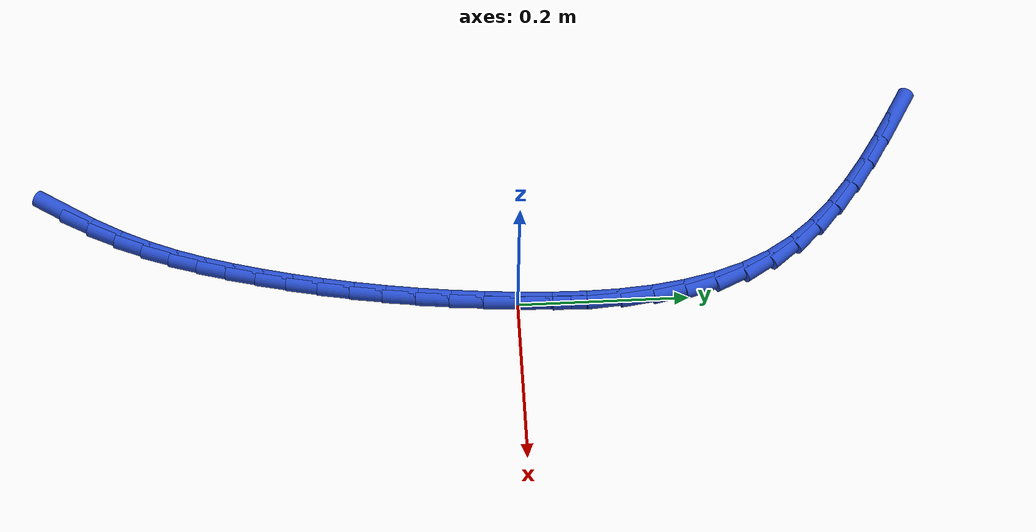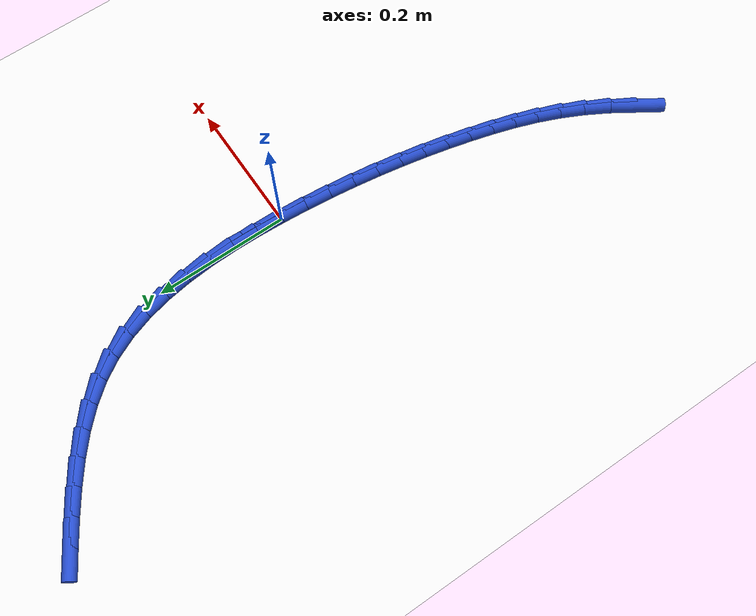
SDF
<sdf version="1.6">
 <world name="default">
  <model name="ground_plane">
   <static>1</static>
   <link name="link">
    <collision name="collision">
     <geometry><plane><normal>0 0 1</normal><size>100 100</size></plane></geometry>
     <surface><friction><ode><mu>100</mu><mu2>50</mu2></ode></friction></surface>
    </collision>
    <visual name="visual">
     <cast_shadows>0</cast_shadows>
     <geometry><plane><normal>0 0 1</normal><size>100 100</size></plane></geometry>
     <material>
      <script><uri>file://media/materials/scripts/gazebo.material</uri><name>Gazebo/WhiteGlow</name></script>
     </material>
    </visual>
   </link>
  </model>
  <model name="line">
   <link name="link_0">
    <pose>1.8323016715005025e-17 -6.245004513516506e-17 0.01 0 1.57 1.5251426368215633</pose>
    <collision name="collision">
     <geometry><cylinder><radius>0.01</radius><length>0.08</length></cylinder></geometry>
    </collision>
    <visual name="visual">
     <material>
      <script><name>Gazebo/Blue</name><uri>file://media/materials/scripts/gazebo.material</uri></script>
     </material>
     <geometry><cylinder><radius>0.01</radius><length>0.08</length></cylinder></geometry>
    </visual>
   </link>
   <link name="link_1">
    <pose>0.001823124579597939 0.039906035702922844 0.01 0 1.57 1.5586776729738612</pose>
    <collision name="collision">
     <geometry><cylinder><radius>0.01</radius><length>0.08</length></cylinder></geometry>
    </collision>
    <visual name="visual">
     <material>
      <script><name>Gazebo/Blue</name><uri>file://media/materials/scripts/gazebo.material</uri></script>
     </material>
     <geometry><cylinder><radius>0.01</radius><length>0.08</length></cylinder></geometry>
    </visual>
   </link>
   <link name="link_2">
    <pose>0.002307320925035968 0.07985871106152502 0.01 0 1.57 -1.5397878494639026</pose>
    <collision name="collision">
     <geometry><cylinder><radius>0.01</radius><length>0.08</length></cylinder></geometry>
    </collision>
    <visual name="visual">
     <material>
      <script><name>Gazebo/Blue</name><uri>file://media/materials/scripts/gazebo.material</uri></script>
     </material>
     <geometry><cylinder><radius>0.01</radius><length>0.08</length></cylinder></geometry>
    </visual>
   </link>
   <link name="link_3">
    <pose>0.001077854602514132 0.11949536363447913 0.01 0 1.57 -1.4858361308100432</pose>
    <collision name="collision">
     <geometry><cylinder><radius>0.01</radius><length>0.08</length></cylinder></geometry>
    </collision>
    <visual name="visual">
     <material>
      <script><name>Gazebo/Blue</name><uri>file://media/materials/scripts/gazebo.material</uri></script>
     </material>
     <geometry><cylinder><radius>0.01</radius><length>0.08</length></cylinder></geometry>
    </visual>
   </link>
   <link name="link_4">
    <pose>-0.00224000882176753 0.15845333098045805 0.01 0 1.57 -1.419495529759492</pose>
    <collision name="collision">
     <geometry><cylinder><radius>0.01</radius><length>0.08</length></cylinder></geometry>
    </collision>
    <visual name="visual">
     <material>
      <script><name>Gazebo/Blue</name><uri>file://media/materials/scripts/gazebo.material</uri></script>
     </material>
     <geometry><cylinder><radius>0.01</radius><length>0.08</length></cylinder></geometry>
    </visual>
   </link>
   <link name="link_5">
    <pose>-0.008021003781608981 0.19636995065813442 0.01 0 1.57 -1.3389880088679615</pose>
    <collision name="collision">
     <geometry><cylinder><radius>0.01</radius><length>0.08</length></cylinder></geometry>
    </collision>
    <visual name="visual">
     <material>
      <script><name>Gazebo/Blue</name><uri>file://media/materials/scripts/gazebo.material</uri></script>
     </material>
     <geometry><cylinder><radius>0.01</radius><length>0.08</length></cylinder></geometry>
    </visual>
   </link>
   <link name="link_6">
    <pose>-0.01663986471081019 0.2328825602261812 0.01 0 1.57 -1.2425975833872176</pose>
    <collision name="collision">
     <geometry><cylinder><radius>0.01</radius><length>0.08</length></cylinder></geometry>
    </collision>
    <visual name="visual">
     <material>
      <script><name>Gazebo/Blue</name><uri>file://media/materials/scripts/gazebo.material</uri></script>
     </material>
     <geometry><cylinder><radius>0.01</radius><length>0.08</length></cylinder></geometry>
    </visual>
   </link>
   <link name="link_7">
    <pose>-0.028471326043171135 0.26762849724327115 0.01 0 1.57 -1.1292029909747927</pose>
    <collision name="collision">
     <geometry><cylinder><radius>0.01</radius><length>0.08</length></cylinder></geometry>
    </collision>
    <visual name="visual">
     <material>
      <script><name>Gazebo/Blue</name><uri>file://media/materials/scripts/gazebo.material</uri></script>
     </material>
     <geometry><cylinder><radius>0.01</radius><length>0.08</length></cylinder></geometry>
    </visual>
   </link>
   <link name="link_8">
    <pose>-0.04389012221249174 0.30024509926807685 0.01 0 1.57 -1.0010231774164045</pose>
    <collision name="collision">
     <geometry><cylinder><radius>0.01</radius><length>0.08</length></cylinder></geometry>
    </collision>
    <visual name="visual">
     <material>
      <script><name>Gazebo/Blue</name><uri>file://media/materials/scripts/gazebo.material</uri></script>
     </material>
     <geometry><cylinder><radius>0.01</radius><length>0.08</length></cylinder></geometry>
    </visual>
   </link>
   <link name="link_9">
    <pose>-0.0632168896026896 0.3304126028798858 0.01 0 1.57 -0.8792305918177935</pose>
    <collision name="collision">
     <geometry><cylinder><radius>0.01</radius><length>0.08</length></cylinder></geometry>
    </collision>
    <visual name="visual">
     <material>
      <script><name>Gazebo/Blue</name><uri>file://media/materials/scripts/gazebo.material</uri></script>
     </material>
     <geometry><cylinder><radius>0.01</radius><length>0.08</length></cylinder></geometry>
    </visual>
   </link>
   <link name="link_10">
    <pose>-0.08624703949034289 0.3582277410521449 0.01 0 1.57 -0.7769436868115438</pose>
    <collision name="collision">
     <geometry><cylinder><radius>0.01</radius><length>0.08</length></cylinder></geometry>
    </collision>
    <visual name="visual">
     <material>
      <script><name>Gazebo/Blue</name><uri>file://media/materials/scripts/gazebo.material</uri></script>
     </material>
     <geometry><cylinder><radius>0.01</radius><length>0.08</length></cylinder></geometry>
    </visual>
   </link>
   <link name="link_11">
    <pose>-0.11248063020996737 0.3840214576397958 0.01 0 1.57 -0.6946230285980459</pose>
    <collision name="collision">
     <geometry><cylinder><radius>0.01</radius><length>0.08</length></cylinder></geometry>
    </collision>
    <visual name="visual">
     <material>
      <script><name>Gazebo/Blue</name><uri>file://media/materials/scripts/gazebo.material</uri></script>
     </material>
     <geometry><cylinder><radius>0.01</radius><length>0.08</length></cylinder></geometry>
    </visual>
   </link>
   <link name="link_12">
    <pose>-0.14141442858764197 0.40812730661937613 0.01 0 1.57 -0.6311238713219045</pose>
    <collision name="collision">
     <geometry><cylinder><radius>0.01</radius><length>0.08</length></cylinder></geometry>
    </collision>
    <visual name="visual">
     <material>
      <script><name>Gazebo/Blue</name><uri>file://media/materials/scripts/gazebo.material</uri></script>
     </material>
     <geometry><cylinder><radius>0.01</radius><length>0.08</length></cylinder></geometry>
    </visual>
   </link>
   <link name="link_13">
    <pose>-0.17254520144944543 0.4308788419674236 0.01 0 1.57 -0.5847849378091307</pose>
    <collision name="collision">
     <geometry><cylinder><radius>0.01</radius><length>0.08</length></cylinder></geometry>
    </collision>
    <visual name="visual">
     <material>
      <script><name>Gazebo/Blue</name><uri>file://media/materials/scripts/gazebo.material</uri></script>
     </material>
     <geometry><cylinder><radius>0.01</radius><length>0.08</length></cylinder></geometry>
    </visual>
   </link>
   <link name="link_14">
    <pose>-0.20536971562145648 0.4526096176604761 0.01 0 1.57 -0.5540237378900601</pose>
    <collision name="collision">
     <geometry><cylinder><radius>0.01</radius><length>0.08</length></cylinder></geometry>
    </collision>
    <visual name="visual">
     <material>
      <script><name>Gazebo/Blue</name><uri>file://media/materials/scripts/gazebo.material</uri></script>
     </material>
     <geometry><cylinder><radius>0.01</radius><length>0.08</length></cylinder></geometry>
    </visual>
   </link>
   <link name="link_15">
    <pose>-0.23938473792975384 0.4736531876750713 0.01 0 1.57 -0.5376293861707933</pose>
    <collision name="collision">
     <geometry><cylinder><radius>0.01</radius><length>0.08</length></cylinder></geometry>
    </collision>
    <visual name="visual">
     <material>
      <script><name>Gazebo/Blue</name><uri>file://media/materials/scripts/gazebo.material</uri></script>
     </material>
     <geometry><cylinder><radius>0.01</radius><length>0.08</length></cylinder></geometry>
    </visual>
   </link>
   <link name="link_185">
    <pose>-0.14813706879358973 -0.5320665771067353 0.01 0 1.57 0.9918417177664055</pose>
    <collision name="collision">
     <geometry><cylinder><radius>0.01</radius><length>0.08</length></cylinder></geometry>
    </collision>
    <visual name="visual">
     <material>
      <script><name>Gazebo/Blue</name><uri>file://media/materials/scripts/gazebo.material</uri></script>
     </material>
     <geometry><cylinder><radius>0.01</radius><length>0.08</length></cylinder></geometry>
    </visual>
   </link>
   <link name="link_186">
    <pose>-0.125837336714433 -0.4979521928504405 0.01 0 1.57 1.054566456109607</pose>
    <collision name="collision">
     <geometry><cylinder><radius>0.01</radius><length>0.08</length></cylinder></geometry>
    </collision>
    <visual name="visual">
     <material>
      <script><name>Gazebo/Blue</name><uri>file://media/materials/scripts/gazebo.material</uri></script>
     </material>
     <geometry><cylinder><radius>0.01</radius><length>0.08</length></cylinder></geometry>
    </visual>
   </link>
   <link name="link_187">
    <pose>-0.10693077821977816 -0.4646405753344191 0.01 0 1.57 1.1172665763089482</pose>
    <collision name="collision">
     <geometry><cylinder><radius>0.01</radius><length>0.08</length></cylinder></geometry>
    </collision>
    <visual name="visual">
     <material>
      <script><name>Gazebo/Blue</name><uri>file://media/materials/scripts/gazebo.material</uri></script>
     </material>
     <geometry><cylinder><radius>0.01</radius><length>0.08</length></cylinder></geometry>
    </visual>
   </link>
   <link name="link_188">
    <pose>-0.09093541901012803 -0.43182392142725745 0.01 0 1.57 1.1767754906327805</pose>
    <collision name="collision">
     <geometry><cylinder><radius>0.01</radius><length>0.08</length></cylinder></geometry>
    </collision>
    <visual name="visual">
     <material>
      <script><name>Gazebo/Blue</name><uri>file://media/materials/scripts/gazebo.material</uri></script>
     </material>
     <geometry><cylinder><radius>0.01</radius><length>0.08</length></cylinder></geometry>
    </visual>
   </link>
   <link name="link_189">
    <pose>-0.07736928478598547 -0.3991944279975424 0.01 0 1.57 1.2298752067685956</pose>
    <collision name="collision">
     <geometry><cylinder><radius>0.01</radius><length>0.08</length></cylinder></geometry>
    </collision>
    <visual name="visual">
     <material>
      <script><name>Gazebo/Blue</name><uri>file://media/materials/scripts/gazebo.material</uri></script>
     </material>
     <geometry><cylinder><radius>0.01</radius><length>0.08</length></cylinder></geometry>
    </visual>
   </link>
   <link name="link_190">
    <pose>-0.06575040124785338 -0.366444291913861 0.01 0 1.57 1.2738175885470675</pose>
    <collision name="collision">
     <geometry><cylinder><radius>0.01</radius><length>0.08</length></cylinder></geometry>
    </collision>
    <visual name="visual">
     <material>
      <script><name>Gazebo/Blue</name><uri>file://media/materials/scripts/gazebo.material</uri></script>
     </material>
     <geometry><cylinder><radius>0.01</radius><length>0.08</length></cylinder></geometry>
    </visual>
   </link>
   <link name="link_191">
    <pose>-0.05559679409623466 -0.33326571004479977 0.01 0 1.57 1.3067622944929573</pose>
    <collision name="collision">
     <geometry><cylinder><radius>0.01</radius><length>0.08</length></cylinder></geometry>
    </collision>
    <visual name="visual">
     <material>
      <script><name>Gazebo/Blue</name><uri>file://media/materials/scripts/gazebo.material</uri></script>
     </material>
     <geometry><cylinder><radius>0.01</radius><length>0.08</length></cylinder></geometry>
    </visual>
   </link>
   <link name="link_192">
    <pose>-0.04642844389007797 -0.29935228120726803 0.01 0 1.57 1.3317584568616578</pose>
    <collision name="collision">
     <geometry><cylinder><radius>0.01</radius><length>0.08</length></cylinder></geometry>
    </collision>
    <visual name="visual">
     <material>
      <script><name>Gazebo/Blue</name><uri>file://media/materials/scripts/gazebo.material</uri></script>
     </material>
     <geometry><cylinder><radius>0.01</radius><length>0.08</length></cylinder></geometry>
    </visual>
   </link>
   <link name="link_193">
    <pose>-0.03794074413477838 -0.2645234035497759 0.01 0 1.57 1.3557038758034272</pose>
    <collision name="collision">
     <geometry><cylinder><radius>0.01</radius><length>0.08</length></cylinder></geometry>
    </collision>
    <visual name="visual">
     <material>
      <script><name>Gazebo/Blue</name><uri>file://media/materials/scripts/gazebo.material</uri></script>
     </material>
     <geometry><cylinder><radius>0.01</radius><length>0.08</length></cylinder></geometry>
    </visual>
   </link>
   <link name="link_194">
    <pose>-0.03014102456695075 -0.2288221837337198 0.01 0 1.57 1.3794447620978687</pose>
    <collision name="collision">
     <geometry><cylinder><radius>0.01</radius><length>0.08</length></cylinder></geometry>
    </collision>
    <visual name="visual">
     <material>
      <script><name>Gazebo/Blue</name><uri>file://media/materials/scripts/gazebo.material</uri></script>
     </material>
     <geometry><cylinder><radius>0.01</radius><length>0.08</length></cylinder></geometry>
    </visual>
   </link>
   <link name="link_195">
    <pose>-0.023068744274150517 -0.19231477033932223 0.01 0 1.57 1.4031025795800909</pose>
    <collision name="collision">
     <geometry><cylinder><radius>0.01</radius><length>0.08</length></cylinder></geometry>
    </collision>
    <visual name="visual">
     <material>
      <script><name>Gazebo/Blue</name><uri>file://media/materials/scripts/gazebo.material</uri></script>
     </material>
     <geometry><cylinder><radius>0.01</radius><length>0.08</length></cylinder></geometry>
    </visual>
   </link>
   <link name="link_196">
    <pose>-0.016763362343933087 -0.15506731194680567 0.01 0 1.57 1.4267888501584995</pose>
    <collision name="collision">
     <geometry><cylinder><radius>0.01</radius><length>0.08</length></cylinder></geometry>
    </collision>
    <visual name="visual">
     <material>
      <script><name>Gazebo/Blue</name><uri>file://media/materials/scripts/gazebo.material</uri></script>
     </material>
     <geometry><cylinder><radius>0.01</radius><length>0.08</length></cylinder></geometry>
    </visual>
   </link>
   <link name="link_197">
    <pose>-0.011264337863853892 -0.11714595713639259 0.01 0 1.57 1.4506071672411225</pose>
    <collision name="collision">
     <geometry><cylinder><radius>0.01</radius><length>0.08</length></cylinder></geometry>
    </collision>
    <visual name="visual">
     <material>
      <script><name>Gazebo/Blue</name><uri>file://media/materials/scripts/gazebo.material</uri></script>
     </material>
     <geometry><cylinder><radius>0.01</radius><length>0.08</length></cylinder></geometry>
    </visual>
   </link>
   <link name="link_198">
    <pose>-0.006611129921468361 -0.07861685448830567 0.01 0 1.57 1.4746548259248295</pose>
    <collision name="collision">
     <geometry><cylinder><radius>0.01</radius><length>0.08</length></cylinder></geometry>
    </collision>
    <visual name="visual">
     <material>
      <script><name>Gazebo/Blue</name><uri>file://media/materials/scripts/gazebo.material</uri></script>
     </material>
     <geometry><cylinder><radius>0.01</radius><length>0.08</length></cylinder></geometry>
    </visual>
   </link>
   <link name="link_199">
    <pose>-0.00284319760433191 -0.039546152582767266 0.01 0 1.57 1.4990241381711211</pose>
    <collision name="collision">
     <geometry><cylinder><radius>0.01</radius><length>0.08</length></cylinder></geometry>
    </collision>
    <visual name="visual">
     <material>
      <script><name>Gazebo/Blue</name><uri>file://media/materials/scripts/gazebo.material</uri></script>
     </material>
     <geometry><cylinder><radius>0.01</radius><length>0.08</length></cylinder></geometry>
    </visual>
   </link>
   <link name="link_200">
    <pose>3.599551212651875e-17 6.938893903907228e-17 0.01 0 1.57 1.523803482801652</pose>
    <collision name="collision">
     <geometry><cylinder><radius>0.01</radius><length>0.08</length></cylinder></geometry>
    </collision>
    <visual name="visual">
     <material>
      <script><name>Gazebo/Blue</name><uri>file://media/materials/scripts/gazebo.material</uri></script>
     </material>
     <geometry><cylinder><radius>0.01</radius><length>0.08</length></cylinder></geometry>
    </visual>
   </link>
   <link name="link_201">
    <pose>0.0018790038039720775 0.03995545467977471 0.01 0 1.57 1.5238034828016518</pose>
    <collision name="collision">
     <geometry><cylinder><radius>0.01</radius><length>0.08</length></cylinder></geometry>
    </collision>
    <visual name="visual">
     <material>
      <script><name>Gazebo/Blue</name><uri>file://media/materials/scripts/gazebo.material</uri></script>
     </material>
     <geometry><cylinder><radius>0.01</radius><length>0.08</length></cylinder></geometry>
    </visual>
   </link>
  </model>
 </world>
</sdf>
